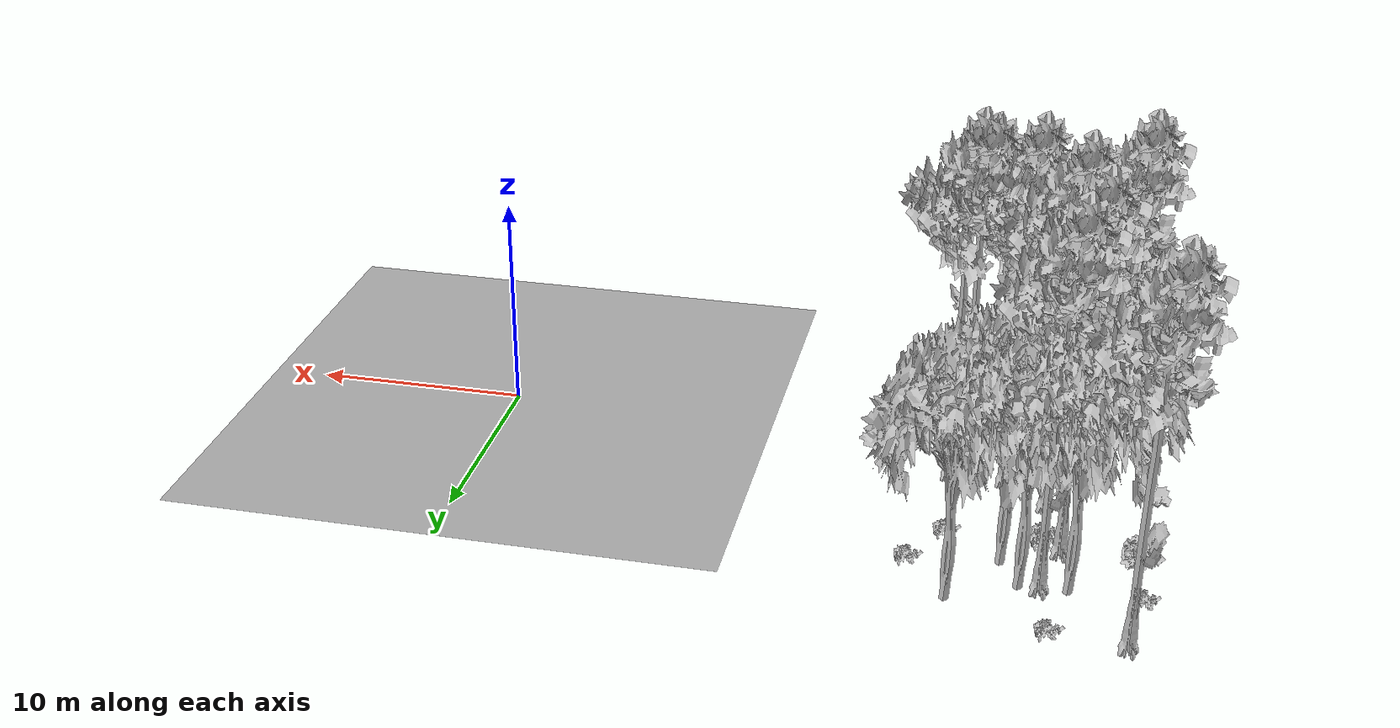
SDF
<sdf version="1.7">
 <world name="default">
  <model name="ground_plane">
   <static>1</static>
   <link name="link">
    <collision name="collision">
     <pose>-50 0 0 0 -0 0</pose>
     <geometry><plane><normal>0 0 1</normal><size>80 80</size></plane></geometry>
     <surface><contact><ode><min_depth>0.01</min_depth><max_vel>0</max_vel></ode></contact></surface>
    </collision>
    <visual name="grass">
     <cast_shadows>0</cast_shadows>
     <geometry>
      <mesh>
       <scale>0.46714285714285714 0.46714285714285714 0.1</scale>
       <uri>file://grass_plane/meshes/grass_plane.dae</uri>
      </mesh>
     </geometry>
    </visual>
   </link>
  </model>
  <model name="Tree 7">
   <static>1</static>
   <pose>-28.308376100540656 1.2800940678118167 0 1.57079 -0 0</pose>
   <link name="link">
    <collision name="collision">
     <geometry><mesh><scale>3.5 5 3.5</scale><uri>model://tree_2/meshes/tree_2.obj</uri></mesh></geometry>
    </collision>
    <visual name="visual">
     <geometry><mesh><scale>3.5 5 3.5</scale><uri>model://tree_2/meshes/tree_2.obj</uri></mesh></geometry>
    </visual>
   </link>
  </model>
  <model name="Tree 71">
   <static>1</static>
   <pose>-29.404084443339624 13.734212992762096 0 1.57079 -0 0</pose>
   <link name="link">
    <collision name="collision">
     <geometry><mesh><scale>3.5 5 3.5</scale><uri>model://tree_9/meshes/tree_9.obj</uri></mesh></geometry>
    </collision>
    <visual name="visual">
     <geometry><mesh><scale>3.5 5 3.5</scale><uri>model://tree_9/meshes/tree_9.obj</uri></mesh></geometry>
    </visual>
   </link>
  </model>
  <model name="Tree 98">
   <static>1</static>
   <pose>-22.0957877588953 12.402058337750475 0 1.57079 -0 0</pose>
   <link name="link">
    <collision name="collision">
     <geometry><mesh><scale>3.5 5 3.5</scale><uri>model://tree_2/meshes/tree_2.obj</uri></mesh></geometry>
    </collision>
    <visual name="visual">
     <geometry><mesh><scale>3.5 5 3.5</scale><uri>model://tree_2/meshes/tree_2.obj</uri></mesh></geometry>
    </visual>
   </link>
  </model>
  <model name="Tree 141">
   <static>1</static>
   <pose>-26.43814992850588 7.4705178259892975 0 1.57079 -0 0</pose>
   <link name="link">
    <collision name="collision">
     <geometry><mesh><scale>3.5 5 3.5</scale><uri>model://tree_9/meshes/tree_9.obj</uri></mesh></geometry>
    </collision>
    <visual name="visual">
     <geometry><mesh><scale>3.5 5 3.5</scale><uri>model://tree_9/meshes/tree_9.obj</uri></mesh></geometry>
    </visual>
   </link>
  </model>
  <model name="Tree 147">
   <static>1</static>
   <pose>-23.67746900121659 2.137874271668352 0 1.57079 -0 0</pose>
   <link name="link">
    <collision name="collision">
     <geometry><mesh><scale>3.5 5 3.5</scale><uri>model://tree_9/meshes/tree_9.obj</uri></mesh></geometry>
    </collision>
    <visual name="visual">
     <geometry><mesh><scale>3.5 5 3.5</scale><uri>model://tree_9/meshes/tree_9.obj</uri></mesh></geometry>
    </visual>
   </link>
  </model>
  <model name="Tree 199">
   <static>1</static>
   <pose>-21.1983291910972 2.0794176497833377 0 1.57079 -0 0</pose>
   <link name="link">
    <collision name="collision">
     <geometry><mesh><scale>3.5 5 3.5</scale><uri>model://tree_9/meshes/tree_9.obj</uri></mesh></geometry>
    </collision>
    <visual name="visual">
     <geometry><mesh><scale>3.5 5 3.5</scale><uri>model://tree_9/meshes/tree_9.obj</uri></mesh></geometry>
    </visual>
   </link>
  </model>
  <model name="Tree 314">
   <static>1</static>
   <pose>-25.731577218177854 10.41888983585131 0 1.57079 -0 0</pose>
   <link name="link">
    <collision name="collision">
     <geometry><mesh><scale>3.5 5 3.5</scale><uri>model://tree_9/meshes/tree_9.obj</uri></mesh></geometry>
    </collision>
    <visual name="visual">
     <geometry><mesh><scale>3.5 5 3.5</scale><uri>model://tree_9/meshes/tree_9.obj</uri></mesh></geometry>
    </visual>
   </link>
  </model>
  <model name="Tree 316">
   <static>1</static>
   <pose>-24.107383645031952 9.331727869523036 0 1.57079 -0 0</pose>
   <link name="link">
    <collision name="collision">
     <geometry><mesh><scale>3.5 5 3.5</scale><uri>model://tree_2/meshes/tree_2.obj</uri></mesh></geometry>
    </collision>
    <visual name="visual">
     <geometry><mesh><scale>3.5 5 3.5</scale><uri>model://tree_2/meshes/tree_2.obj</uri></mesh></geometry>
    </visual>
   </link>
  </model>
  <model name="Tree 358">
   <static>1</static>
   <pose>-25.62530036634382 3.890527701238085 0 1.57079 -0 0</pose>
   <link name="link">
    <collision name="collision">
     <geometry><mesh><scale>3.5 5 3.5</scale><uri>model://tree_9/meshes/tree_9.obj</uri></mesh></geometry>
    </collision>
    <visual name="visual">
     <geometry><mesh><scale>3.5 5 3.5</scale><uri>model://tree_9/meshes/tree_9.obj</uri></mesh></geometry>
    </visual>
   </link>
  </model>
  <model name="Tree 366">
   <static>1</static>
   <pose>-24.96383742942216 10.971145188794289 0 1.57079 -0 0</pose>
   <link name="link">
    <collision name="collision">
     <geometry><mesh><scale>3.5 5 3.5</scale><uri>model://tree_2/meshes/tree_2.obj</uri></mesh></geometry>
    </collision>
    <visual name="visual">
     <geometry><mesh><scale>3.5 5 3.5</scale><uri>model://tree_2/meshes/tree_2.obj</uri></mesh></geometry>
    </visual>
   </link>
  </model>
  <model name="Tree 391">
   <static>1</static>
   <pose>-26.986679892127057 10.90239384378009 0 1.57079 -0 0</pose>
   <link name="link">
    <collision name="collision">
     <geometry><mesh><scale>3.5 5 3.5</scale><uri>model://tree_2/meshes/tree_2.obj</uri></mesh></geometry>
    </collision>
    <visual name="visual">
     <geometry><mesh><scale>3.5 5 3.5</scale><uri>model://tree_2/meshes/tree_2.obj</uri></mesh></geometry>
    </visual>
   </link>
  </model>
  <model name="Tree 484">
   <static>1</static>
   <pose>-21.774439958585692 2.6036548522390106 0 1.57079 -0 0</pose>
   <link name="link">
    <collision name="collision">
     <geometry><mesh><scale>3.5 5 3.5</scale><uri>model://tree_9/meshes/tree_9.obj</uri></mesh></geometry>
    </collision>
    <visual name="visual">
     <geometry><mesh><scale>3.5 5 3.5</scale><uri>model://tree_9/meshes/tree_9.obj</uri></mesh></geometry>
    </visual>
   </link>
  </model>
  <model name="Tree 573">
   <static>1</static>
   <pose>-28.156175477568173 0.8247514594630161 0 1.57079 -0 0</pose>
   <link name="link">
    <collision name="collision">
     <geometry><mesh><scale>3.5 5 3.5</scale><uri>model://tree_9/meshes/tree_9.obj</uri></mesh></geometry>
    </collision>
    <visual name="visual">
     <geometry><mesh><scale>3.5 5 3.5</scale><uri>model://tree_9/meshes/tree_9.obj</uri></mesh></geometry>
    </visual>
   </link>
  </model>
  <model name="Bush 148">
   <static>1</static>
   <pose>-25.677290128585902 7.26506856343623 0 1.57079 -0 0</pose>
   <link name="link">
    <collision name="collision">
     <geometry><mesh><scale>2 2 2</scale><uri>model://bush_2/meshes/bush_2.obj</uri></mesh></geometry>
     <surface><contact><collide_without_contact>false</collide_without_contact></contact></surface>
    </collision>
    <visual name="visual">
     <geometry><mesh><scale>2 2 2</scale><uri>model://bush_2/meshes/bush_2.obj</uri></mesh></geometry>
    </visual>
   </link>
  </model>
  <model name="Bush 201">
   <static>1</static>
   <pose>-25.97686624936276 -0.00756036737360688 0 1.57079 -0 0</pose>
   <link name="link">
    <collision name="collision">
     <geometry><mesh><scale>2 2 2</scale><uri>model://bush_1/meshes/bush_1.obj</uri></mesh></geometry>
     <surface><contact><collide_without_contact>false</collide_without_contact></contact></surface>
    </collision>
    <visual name="visual">
     <geometry><mesh><scale>2 2 2</scale><uri>model://bush_1/meshes/bush_1.obj</uri></mesh></geometry>
    </visual>
   </link>
  </model>
  <model name="Bush 208">
   <static>1</static>
   <pose>-29.70524909257419 8.610386503855295 0 1.57079 -0 0</pose>
   <link name="link">
    <collision name="collision">
     <geometry><mesh><scale>2 2 2</scale><uri>model://bush_1/meshes/bush_1.obj</uri></mesh></geometry>
     <surface><contact><collide_without_contact>false</collide_without_contact></contact></surface>
    </collision>
    <visual name="visual">
     <geometry><mesh><scale>2 2 2</scale><uri>model://bush_1/meshes/bush_1.obj</uri></mesh></geometry>
    </visual>
   </link>
  </model>
  <model name="Bush 269">
   <static>1</static>
   <pose>-20.159759774113596 9.632910157895473 0 1.57079 -0 0</pose>
   <link name="link">
    <collision name="collision">
     <geometry><mesh><scale>2 2 2</scale><uri>model://bush_2/meshes/bush_2.obj</uri></mesh></geometry>
     <surface><contact><collide_without_contact>false</collide_without_contact></contact></surface>
    </collision>
    <visual name="visual">
     <geometry><mesh><scale>2 2 2</scale><uri>model://bush_2/meshes/bush_2.obj</uri></mesh></geometry>
    </visual>
   </link>
  </model>
  <model name="Bush 444">
   <static>1</static>
   <pose>-25.717765944777142 6.598236539908761 0 1.57079 -0 0</pose>
   <link name="link">
    <collision name="collision">
     <geometry><mesh><scale>2 2 2</scale><uri>model://bush_2/meshes/bush_2.obj</uri></mesh></geometry>
     <surface><contact><collide_without_contact>false</collide_without_contact></contact></surface>
    </collision>
    <visual name="visual">
     <geometry><mesh><scale>2 2 2</scale><uri>model://bush_2/meshes/bush_2.obj</uri></mesh></geometry>
    </visual>
   </link>
  </model>
  <model name="Bush 511">
   <static>1</static>
   <pose>-21.545656787619492 7.270107370864153 0 1.57079 -0 0</pose>
   <link name="link">
    <collision name="collision">
     <geometry><mesh><scale>2 2 2</scale><uri>model://bush_2/meshes/bush_2.obj</uri></mesh></geometry>
     <surface><contact><collide_without_contact>false</collide_without_contact></contact></surface>
    </collision>
    <visual name="visual">
     <geometry><mesh><scale>2 2 2</scale><uri>model://bush_2/meshes/bush_2.obj</uri></mesh></geometry>
    </visual>
   </link>
  </model>
  <model name="Bush 540">
   <static>1</static>
   <pose>-24.290671461992908 3.0118451393185524 0 1.57079 -0 0</pose>
   <link name="link">
    <collision name="collision">
     <geometry><mesh><scale>2 2 2</scale><uri>model://bush_5/meshes/bush_5.obj</uri></mesh></geometry>
     <surface><contact><collide_without_contact>false</collide_without_contact></contact></surface>
    </collision>
    <visual name="visual">
     <geometry><mesh><scale>2 2 2</scale><uri>model://bush_5/meshes/bush_5.obj</uri></mesh></geometry>
    </visual>
   </link>
  </model>
  <model name="Bush 557">
   <static>1</static>
   <pose>-26.2448425676854 13.7325662253647 0 1.57079 -0 0</pose>
   <link name="link">
    <collision name="collision">
     <geometry><mesh><scale>2 2 2</scale><uri>model://bush_2/meshes/bush_2.obj</uri></mesh></geometry>
     <surface><contact><collide_without_contact>false</collide_without_contact></contact></surface>
    </collision>
    <visual name="visual">
     <geometry><mesh><scale>2 2 2</scale><uri>model://bush_2/meshes/bush_2.obj</uri></mesh></geometry>
    </visual>
   </link>
  </model>
  <model name="Bush 608">
   <static>1</static>
   <pose>-24.741854121551356 0.766935488897353 0 1.57079 -0 0</pose>
   <link name="link">
    <collision name="collision">
     <geometry><mesh><scale>2 2 2</scale><uri>model://bush_0/meshes/bush_0.obj</uri></mesh></geometry>
     <surface><contact><collide_without_contact>false</collide_without_contact></contact></surface>
    </collision>
    <visual name="visual">
     <geometry><mesh><scale>2 2 2</scale><uri>model://bush_0/meshes/bush_0.obj</uri></mesh></geometry>
    </visual>
   </link>
  </model>
  <model name="Bush 631">
   <static>1</static>
   <pose>-29.973521049728866 10.815286198386005 0 1.57079 -0 0</pose>
   <link name="link">
    <collision name="collision">
     <geometry><mesh><scale>2 2 2</scale><uri>model://bush_2/meshes/bush_2.obj</uri></mesh></geometry>
     <surface><contact><collide_without_contact>false</collide_without_contact></contact></surface>
    </collision>
    <visual name="visual">
     <geometry><mesh><scale>2 2 2</scale><uri>model://bush_2/meshes/bush_2.obj</uri></mesh></geometry>
    </visual>
   </link>
  </model>
 </world>
</sdf>
